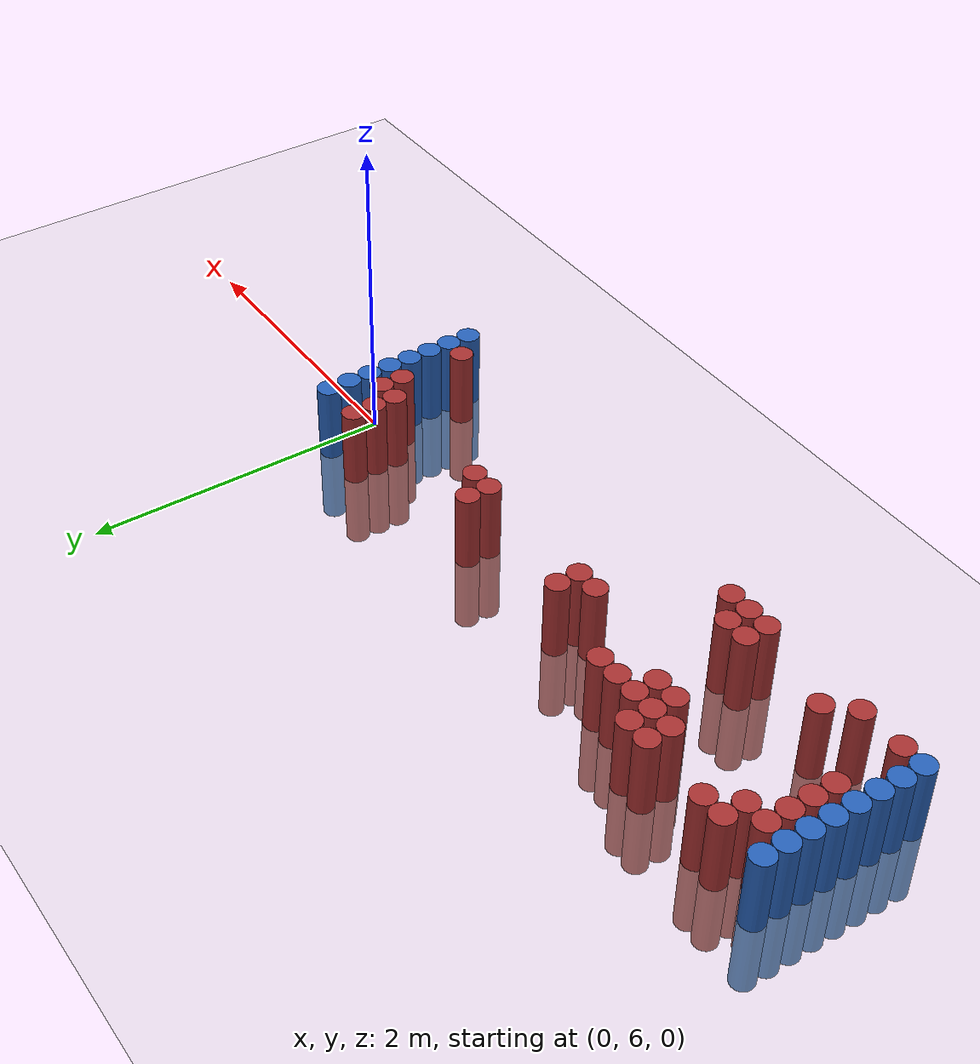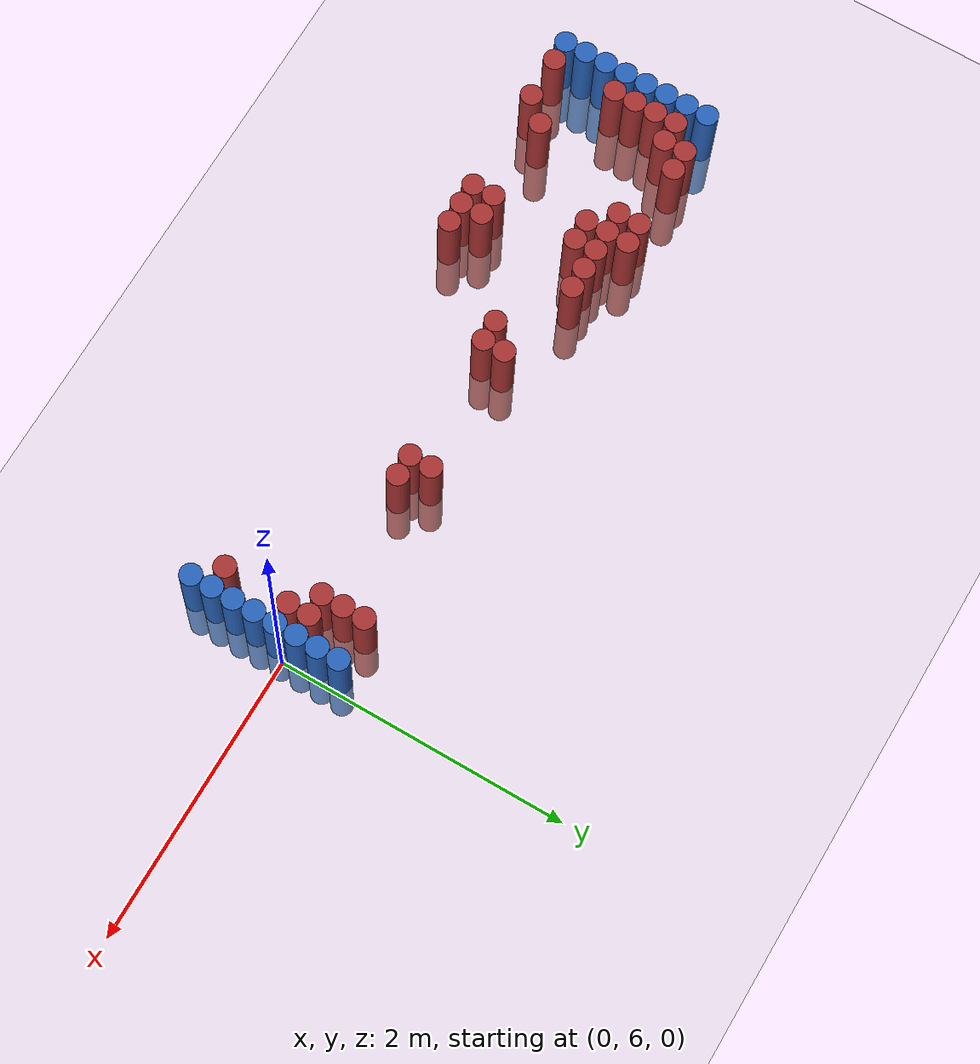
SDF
<sdf version="1.6">
 <world name="default">
  <model name="ground_plane">
   <static>1</static>
   <link name="link">
    <collision name="collision">
     <geometry><plane><normal>0 0 1</normal><size>100 100</size></plane></geometry>
     <surface><friction><ode><mu>100</mu><mu2>50</mu2></ode></friction></surface>
    </collision>
    <visual name="visual">
     <cast_shadows>0</cast_shadows>
     <geometry><plane><normal>0 0 1</normal><size>100 100</size></plane></geometry>
     <material>
      <script><uri>file://media/materials/scripts/gazebo.material</uri><name>Gazebo/Grey</name></script>
     </material>
    </visual>
   </link>
  </model>
  <model name="unit_cylinder_98">
   <static>1</static>
   <pose>-4.425000 5.475000 0.000000 0.000000 0.000000 0.000000</pose>
   <link name="link">
    <inertial>
     <mass>1</mass>
     <inertia><ixx>0.145833</ixx><ixy>0</ixy><ixz>0</ixz><iyy>0.145833</iyy><iyz>0</iyz><izz>0.125</izz></inertia>
    </inertial>
    <collision name="collision">
     <geometry><cylinder><radius>0.075000</radius><length>1</length></cylinder></geometry>
    </collision>
    <visual name="visual">
     <geometry><cylinder><radius>0.075000</radius><length>1</length></cylinder></geometry>
     <material>
      <ambient>0.152000 0.379000 0.720000 1</ambient>
      <diffuse>0.152000 0.379000 0.720000 1</diffuse>
     </material>
     <material>
      <script><name>Gazebo/Grey</name><uri>file://media/materials/scripts/gazebo.material</uri></script>
     </material>
    </visual>
   </link>
  </model>
  <model name="unit_cylinder_99">
   <static>1</static>
   <pose>-4.425000 5.625000 0.000000 0.000000 0.000000 0.000000</pose>
   <link name="link">
    <inertial>
     <mass>1</mass>
     <inertia><ixx>0.145833</ixx><ixy>0</ixy><ixz>0</ixz><iyy>0.145833</iyy><iyz>0</iyz><izz>0.125</izz></inertia>
    </inertial>
    <collision name="collision">
     <geometry><cylinder><radius>0.075000</radius><length>1</length></cylinder></geometry>
    </collision>
    <visual name="visual">
     <geometry><cylinder><radius>0.075000</radius><length>1</length></cylinder></geometry>
     <material>
      <ambient>0.152000 0.379000 0.720000 1</ambient>
      <diffuse>0.152000 0.379000 0.720000 1</diffuse>
     </material>
     <material>
      <script><name>Gazebo/Grey</name><uri>file://media/materials/scripts/gazebo.material</uri></script>
     </material>
    </visual>
   </link>
  </model>
  <model name="unit_cylinder_100">
   <static>1</static>
   <pose>-4.425000 5.775000 0.000000 0.000000 0.000000 0.000000</pose>
   <link name="link">
    <inertial>
     <mass>1</mass>
     <inertia><ixx>0.145833</ixx><ixy>0</ixy><ixz>0</ixz><iyy>0.145833</iyy><iyz>0</iyz><izz>0.125</izz></inertia>
    </inertial>
    <collision name="collision">
     <geometry><cylinder><radius>0.075000</radius><length>1</length></cylinder></geometry>
    </collision>
    <visual name="visual">
     <geometry><cylinder><radius>0.075000</radius><length>1</length></cylinder></geometry>
     <material>
      <ambient>0.152000 0.379000 0.720000 1</ambient>
      <diffuse>0.152000 0.379000 0.720000 1</diffuse>
     </material>
     <material>
      <script><name>Gazebo/Grey</name><uri>file://media/materials/scripts/gazebo.material</uri></script>
     </material>
    </visual>
   </link>
  </model>
  <model name="unit_cylinder_101">
   <static>1</static>
   <pose>-4.425000 5.925000 0.000000 0.000000 0.000000 0.000000</pose>
   <link name="link">
    <inertial>
     <mass>1</mass>
     <inertia><ixx>0.145833</ixx><ixy>0</ixy><ixz>0</ixz><iyy>0.145833</iyy><iyz>0</iyz><izz>0.125</izz></inertia>
    </inertial>
    <collision name="collision">
     <geometry><cylinder><radius>0.075000</radius><length>1</length></cylinder></geometry>
    </collision>
    <visual name="visual">
     <geometry><cylinder><radius>0.075000</radius><length>1</length></cylinder></geometry>
     <material>
      <ambient>0.152000 0.379000 0.720000 1</ambient>
      <diffuse>0.152000 0.379000 0.720000 1</diffuse>
     </material>
     <material>
      <script><name>Gazebo/Grey</name><uri>file://media/materials/scripts/gazebo.material</uri></script>
     </material>
    </visual>
   </link>
  </model>
  <model name="unit_cylinder_102">
   <static>1</static>
   <pose>-4.425000 6.075000 0.000000 0.000000 0.000000 0.000000</pose>
   <link name="link">
    <inertial>
     <mass>1</mass>
     <inertia><ixx>0.145833</ixx><ixy>0</ixy><ixz>0</ixz><iyy>0.145833</iyy><iyz>0</iyz><izz>0.125</izz></inertia>
    </inertial>
    <collision name="collision">
     <geometry><cylinder><radius>0.075000</radius><length>1</length></cylinder></geometry>
    </collision>
    <visual name="visual">
     <geometry><cylinder><radius>0.075000</radius><length>1</length></cylinder></geometry>
     <material>
      <ambient>0.152000 0.379000 0.720000 1</ambient>
      <diffuse>0.152000 0.379000 0.720000 1</diffuse>
     </material>
     <material>
      <script><name>Gazebo/Grey</name><uri>file://media/materials/scripts/gazebo.material</uri></script>
     </material>
    </visual>
   </link>
  </model>
  <model name="unit_cylinder_103">
   <static>1</static>
   <pose>-4.425000 6.225000 0.000000 0.000000 0.000000 0.000000</pose>
   <link name="link">
    <inertial>
     <mass>1</mass>
     <inertia><ixx>0.145833</ixx><ixy>0</ixy><ixz>0</ixz><iyy>0.145833</iyy><iyz>0</iyz><izz>0.125</izz></inertia>
    </inertial>
    <collision name="collision">
     <geometry><cylinder><radius>0.075000</radius><length>1</length></cylinder></geometry>
    </collision>
    <visual name="visual">
     <geometry><cylinder><radius>0.075000</radius><length>1</length></cylinder></geometry>
     <material>
      <ambient>0.152000 0.379000 0.720000 1</ambient>
      <diffuse>0.152000 0.379000 0.720000 1</diffuse>
     </material>
     <material>
      <script><name>Gazebo/Grey</name><uri>file://media/materials/scripts/gazebo.material</uri></script>
     </material>
    </visual>
   </link>
  </model>
  <model name="unit_cylinder_104">
   <static>1</static>
   <pose>-4.425000 6.375000 0.000000 0.000000 0.000000 0.000000</pose>
   <link name="link">
    <inertial>
     <mass>1</mass>
     <inertia><ixx>0.145833</ixx><ixy>0</ixy><ixz>0</ixz><iyy>0.145833</iyy><iyz>0</iyz><izz>0.125</izz></inertia>
    </inertial>
    <collision name="collision">
     <geometry><cylinder><radius>0.075000</radius><length>1</length></cylinder></geometry>
    </collision>
    <visual name="visual">
     <geometry><cylinder><radius>0.075000</radius><length>1</length></cylinder></geometry>
     <material>
      <ambient>0.152000 0.379000 0.720000 1</ambient>
      <diffuse>0.152000 0.379000 0.720000 1</diffuse>
     </material>
     <material>
      <script><name>Gazebo/Grey</name><uri>file://media/materials/scripts/gazebo.material</uri></script>
     </material>
    </visual>
   </link>
  </model>
  <model name="unit_cylinder_105">
   <static>1</static>
   <pose>-4.425000 6.525000 0.000000 0.000000 0.000000 0.000000</pose>
   <link name="link">
    <inertial>
     <mass>1</mass>
     <inertia><ixx>0.145833</ixx><ixy>0</ixy><ixz>0</ixz><iyy>0.145833</iyy><iyz>0</iyz><izz>0.125</izz></inertia>
    </inertial>
    <collision name="collision">
     <geometry><cylinder><radius>0.075000</radius><length>1</length></cylinder></geometry>
    </collision>
    <visual name="visual">
     <geometry><cylinder><radius>0.075000</radius><length>1</length></cylinder></geometry>
     <material>
      <ambient>0.152000 0.379000 0.720000 1</ambient>
      <diffuse>0.152000 0.379000 0.720000 1</diffuse>
     </material>
     <material>
      <script><name>Gazebo/Grey</name><uri>file://media/materials/scripts/gazebo.material</uri></script>
     </material>
    </visual>
   </link>
  </model>
  <model name="unit_cylinder_127">
   <static>1</static>
   <pose>-4.275000 5.475000 0.000000 0.000000 0.000000 0.000000</pose>
   <link name="link">
    <inertial>
     <mass>1</mass>
     <inertia><ixx>0.145833</ixx><ixy>0</ixy><ixz>0</ixz><iyy>0.145833</iyy><iyz>0</iyz><izz>0.125</izz></inertia>
    </inertial>
    <collision name="collision">
     <geometry><cylinder><radius>0.075000</radius><length>1</length></cylinder></geometry>
    </collision>
    <visual name="visual">
     <geometry><cylinder><radius>0.075000</radius><length>1</length></cylinder></geometry>
     <material>
      <ambient>0.648000 0.192000 0.192000 1</ambient>
      <diffuse>0.648000 0.192000 0.192000 1</diffuse>
     </material>
     <material>
      <script><name>Gazebo/Grey</name><uri>file://media/materials/scripts/gazebo.material</uri></script>
     </material>
    </visual>
   </link>
  </model>
  <model name="unit_cylinder_128">
   <static>1</static>
   <pose>-4.275000 5.925000 0.000000 0.000000 0.000000 0.000000</pose>
   <link name="link">
    <inertial>
     <mass>1</mass>
     <inertia><ixx>0.145833</ixx><ixy>0</ixy><ixz>0</ixz><iyy>0.145833</iyy><iyz>0</iyz><izz>0.125</izz></inertia>
    </inertial>
    <collision name="collision">
     <geometry><cylinder><radius>0.075000</radius><length>1</length></cylinder></geometry>
    </collision>
    <visual name="visual">
     <geometry><cylinder><radius>0.075000</radius><length>1</length></cylinder></geometry>
     <material>
      <ambient>0.648000 0.192000 0.192000 1</ambient>
      <diffuse>0.648000 0.192000 0.192000 1</diffuse>
     </material>
     <material>
      <script><name>Gazebo/Grey</name><uri>file://media/materials/scripts/gazebo.material</uri></script>
     </material>
    </visual>
   </link>
  </model>
  <model name="unit_cylinder_129">
   <static>1</static>
   <pose>-4.275000 6.075000 0.000000 0.000000 0.000000 0.000000</pose>
   <link name="link">
    <inertial>
     <mass>1</mass>
     <inertia><ixx>0.145833</ixx><ixy>0</ixy><ixz>0</ixz><iyy>0.145833</iyy><iyz>0</iyz><izz>0.125</izz></inertia>
    </inertial>
    <collision name="collision">
     <geometry><cylinder><radius>0.075000</radius><length>1</length></cylinder></geometry>
    </collision>
    <visual name="visual">
     <geometry><cylinder><radius>0.075000</radius><length>1</length></cylinder></geometry>
     <material>
      <ambient>0.648000 0.192000 0.192000 1</ambient>
      <diffuse>0.648000 0.192000 0.192000 1</diffuse>
     </material>
     <material>
      <script><name>Gazebo/Grey</name><uri>file://media/materials/scripts/gazebo.material</uri></script>
     </material>
    </visual>
   </link>
  </model>
  <model name="unit_cylinder_130">
   <static>1</static>
   <pose>-4.275000 6.225000 0.000000 0.000000 0.000000 0.000000</pose>
   <link name="link">
    <inertial>
     <mass>1</mass>
     <inertia><ixx>0.145833</ixx><ixy>0</ixy><ixz>0</ixz><iyy>0.145833</iyy><iyz>0</iyz><izz>0.125</izz></inertia>
    </inertial>
    <collision name="collision">
     <geometry><cylinder><radius>0.075000</radius><length>1</length></cylinder></geometry>
    </collision>
    <visual name="visual">
     <geometry><cylinder><radius>0.075000</radius><length>1</length></cylinder></geometry>
     <material>
      <ambient>0.648000 0.192000 0.192000 1</ambient>
      <diffuse>0.648000 0.192000 0.192000 1</diffuse>
     </material>
     <material>
      <script><name>Gazebo/Grey</name><uri>file://media/materials/scripts/gazebo.material</uri></script>
     </material>
    </visual>
   </link>
  </model>
  <model name="unit_cylinder_131">
   <static>1</static>
   <pose>-4.275000 6.375000 0.000000 0.000000 0.000000 0.000000</pose>
   <link name="link">
    <inertial>
     <mass>1</mass>
     <inertia><ixx>0.145833</ixx><ixy>0</ixy><ixz>0</ixz><iyy>0.145833</iyy><iyz>0</iyz><izz>0.125</izz></inertia>
    </inertial>
    <collision name="collision">
     <geometry><cylinder><radius>0.075000</radius><length>1</length></cylinder></geometry>
    </collision>
    <visual name="visual">
     <geometry><cylinder><radius>0.075000</radius><length>1</length></cylinder></geometry>
     <material>
      <ambient>0.648000 0.192000 0.192000 1</ambient>
      <diffuse>0.648000 0.192000 0.192000 1</diffuse>
     </material>
     <material>
      <script><name>Gazebo/Grey</name><uri>file://media/materials/scripts/gazebo.material</uri></script>
     </material>
    </visual>
   </link>
  </model>
  <model name="unit_cylinder_137">
   <static>1</static>
   <pose>-4.125000 6.375000 0.000000 0.000000 0.000000 0.000000</pose>
   <link name="link">
    <inertial>
     <mass>1</mass>
     <inertia><ixx>0.145833</ixx><ixy>0</ixy><ixz>0</ixz><iyy>0.145833</iyy><iyz>0</iyz><izz>0.125</izz></inertia>
    </inertial>
    <collision name="collision">
     <geometry><cylinder><radius>0.075000</radius><length>1</length></cylinder></geometry>
    </collision>
    <visual name="visual">
     <geometry><cylinder><radius>0.075000</radius><length>1</length></cylinder></geometry>
     <material>
      <ambient>0.648000 0.192000 0.192000 1</ambient>
      <diffuse>0.648000 0.192000 0.192000 1</diffuse>
     </material>
     <material>
      <script><name>Gazebo/Grey</name><uri>file://media/materials/scripts/gazebo.material</uri></script>
     </material>
    </visual>
   </link>
  </model>
  <model name="unit_cylinder_138">
   <static>1</static>
   <pose>-4.125000 6.525000 0.000000 0.000000 0.000000 0.000000</pose>
   <link name="link">
    <inertial>
     <mass>1</mass>
     <inertia><ixx>0.145833</ixx><ixy>0</ixy><ixz>0</ixz><iyy>0.145833</iyy><iyz>0</iyz><izz>0.125</izz></inertia>
    </inertial>
    <collision name="collision">
     <geometry><cylinder><radius>0.075000</radius><length>1</length></cylinder></geometry>
    </collision>
    <visual name="visual">
     <geometry><cylinder><radius>0.075000</radius><length>1</length></cylinder></geometry>
     <material>
      <ambient>0.648000 0.192000 0.192000 1</ambient>
      <diffuse>0.648000 0.192000 0.192000 1</diffuse>
     </material>
     <material>
      <script><name>Gazebo/Grey</name><uri>file://media/materials/scripts/gazebo.material</uri></script>
     </material>
    </visual>
   </link>
  </model>
  <model name="unit_cylinder_140">
   <static>1</static>
   <pose>-3.975000 5.475000 0.000000 0.000000 0.000000 0.000000</pose>
   <link name="link">
    <inertial>
     <mass>1</mass>
     <inertia><ixx>0.145833</ixx><ixy>0</ixy><ixz>0</ixz><iyy>0.145833</iyy><iyz>0</iyz><izz>0.125</izz></inertia>
    </inertial>
    <collision name="collision">
     <geometry><cylinder><radius>0.075000</radius><length>1</length></cylinder></geometry>
    </collision>
    <visual name="visual">
     <geometry><cylinder><radius>0.075000</radius><length>1</length></cylinder></geometry>
     <material>
      <ambient>0.648000 0.192000 0.192000 1</ambient>
      <diffuse>0.648000 0.192000 0.192000 1</diffuse>
     </material>
     <material>
      <script><name>Gazebo/Grey</name><uri>file://media/materials/scripts/gazebo.material</uri></script>
     </material>
    </visual>
   </link>
  </model>
  <model name="unit_cylinder_141">
   <static>1</static>
   <pose>-3.975000 6.525000 0.000000 0.000000 0.000000 0.000000</pose>
   <link name="link">
    <inertial>
     <mass>1</mass>
     <inertia><ixx>0.145833</ixx><ixy>0</ixy><ixz>0</ixz><iyy>0.145833</iyy><iyz>0</iyz><izz>0.125</izz></inertia>
    </inertial>
    <collision name="collision">
     <geometry><cylinder><radius>0.075000</radius><length>1</length></cylinder></geometry>
    </collision>
    <visual name="visual">
     <geometry><cylinder><radius>0.075000</radius><length>1</length></cylinder></geometry>
     <material>
      <ambient>0.648000 0.192000 0.192000 1</ambient>
      <diffuse>0.648000 0.192000 0.192000 1</diffuse>
     </material>
     <material>
      <script><name>Gazebo/Grey</name><uri>file://media/materials/scripts/gazebo.material</uri></script>
     </material>
    </visual>
   </link>
  </model>
  <model name="unit_cylinder_146">
   <static>1</static>
   <pose>-3.825000 5.625000 0.000000 0.000000 0.000000 0.000000</pose>
   <link name="link">
    <inertial>
     <mass>1</mass>
     <inertia><ixx>0.145833</ixx><ixy>0</ixy><ixz>0</ixz><iyy>0.145833</iyy><iyz>0</iyz><izz>0.125</izz></inertia>
    </inertial>
    <collision name="collision">
     <geometry><cylinder><radius>0.075000</radius><length>1</length></cylinder></geometry>
    </collision>
    <visual name="visual">
     <geometry><cylinder><radius>0.075000</radius><length>1</length></cylinder></geometry>
     <material>
      <ambient>0.648000 0.192000 0.192000 1</ambient>
      <diffuse>0.648000 0.192000 0.192000 1</diffuse>
     </material>
     <material>
      <script><name>Gazebo/Grey</name><uri>file://media/materials/scripts/gazebo.material</uri></script>
     </material>
    </visual>
   </link>
  </model>
  <model name="unit_cylinder_153">
   <static>1</static>
   <pose>-3.525000 6.375000 0.000000 0.000000 0.000000 0.000000</pose>
   <link name="link">
    <inertial>
     <mass>1</mass>
     <inertia><ixx>0.145833</ixx><ixy>0</ixy><ixz>0</ixz><iyy>0.145833</iyy><iyz>0</iyz><izz>0.125</izz></inertia>
    </inertial>
    <collision name="collision">
     <geometry><cylinder><radius>0.075000</radius><length>1</length></cylinder></geometry>
    </collision>
    <visual name="visual">
     <geometry><cylinder><radius>0.075000</radius><length>1</length></cylinder></geometry>
     <material>
      <ambient>0.648000 0.192000 0.192000 1</ambient>
      <diffuse>0.648000 0.192000 0.192000 1</diffuse>
     </material>
     <material>
      <script><name>Gazebo/Grey</name><uri>file://media/materials/scripts/gazebo.material</uri></script>
     </material>
    </visual>
   </link>
  </model>
  <model name="unit_cylinder_154">
   <static>1</static>
   <pose>-3.525000 6.525000 0.000000 0.000000 0.000000 0.000000</pose>
   <link name="link">
    <inertial>
     <mass>1</mass>
     <inertia><ixx>0.145833</ixx><ixy>0</ixy><ixz>0</ixz><iyy>0.145833</iyy><iyz>0</iyz><izz>0.125</izz></inertia>
    </inertial>
    <collision name="collision">
     <geometry><cylinder><radius>0.075000</radius><length>1</length></cylinder></geometry>
    </collision>
    <visual name="visual">
     <geometry><cylinder><radius>0.075000</radius><length>1</length></cylinder></geometry>
     <material>
      <ambient>0.648000 0.192000 0.192000 1</ambient>
      <diffuse>0.648000 0.192000 0.192000 1</diffuse>
     </material>
     <material>
      <script><name>Gazebo/Grey</name><uri>file://media/materials/scripts/gazebo.material</uri></script>
     </material>
    </visual>
   </link>
  </model>
  <model name="unit_cylinder_157">
   <static>1</static>
   <pose>-3.375000 6.225000 0.000000 0.000000 0.000000 0.000000</pose>
   <link name="link">
    <inertial>
     <mass>1</mass>
     <inertia><ixx>0.145833</ixx><ixy>0</ixy><ixz>0</ixz><iyy>0.145833</iyy><iyz>0</iyz><izz>0.125</izz></inertia>
    </inertial>
    <collision name="collision">
     <geometry><cylinder><radius>0.075000</radius><length>1</length></cylinder></geometry>
    </collision>
    <visual name="visual">
     <geometry><cylinder><radius>0.075000</radius><length>1</length></cylinder></geometry>
     <material>
      <ambient>0.648000 0.192000 0.192000 1</ambient>
      <diffuse>0.648000 0.192000 0.192000 1</diffuse>
     </material>
     <material>
      <script><name>Gazebo/Grey</name><uri>file://media/materials/scripts/gazebo.material</uri></script>
     </material>
    </visual>
   </link>
  </model>
  <model name="unit_cylinder_158">
   <static>1</static>
   <pose>-3.375000 6.375000 0.000000 0.000000 0.000000 0.000000</pose>
   <link name="link">
    <inertial>
     <mass>1</mass>
     <inertia><ixx>0.145833</ixx><ixy>0</ixy><ixz>0</ixz><iyy>0.145833</iyy><iyz>0</iyz><izz>0.125</izz></inertia>
    </inertial>
    <collision name="collision">
     <geometry><cylinder><radius>0.075000</radius><length>1</length></cylinder></geometry>
    </collision>
    <visual name="visual">
     <geometry><cylinder><radius>0.075000</radius><length>1</length></cylinder></geometry>
     <material>
      <ambient>0.648000 0.192000 0.192000 1</ambient>
      <diffuse>0.648000 0.192000 0.192000 1</diffuse>
     </material>
     <material>
      <script><name>Gazebo/Grey</name><uri>file://media/materials/scripts/gazebo.material</uri></script>
     </material>
    </visual>
   </link>
  </model>
  <model name="unit_cylinder_159">
   <static>1</static>
   <pose>-3.375000 6.525000 0.000000 0.000000 0.000000 0.000000</pose>
   <link name="link">
    <inertial>
     <mass>1</mass>
     <inertia><ixx>0.145833</ixx><ixy>0</ixy><ixz>0</ixz><iyy>0.145833</iyy><iyz>0</iyz><izz>0.125</izz></inertia>
    </inertial>
    <collision name="collision">
     <geometry><cylinder><radius>0.075000</radius><length>1</length></cylinder></geometry>
    </collision>
    <visual name="visual">
     <geometry><cylinder><radius>0.075000</radius><length>1</length></cylinder></geometry>
     <material>
      <ambient>0.648000 0.192000 0.192000 1</ambient>
      <diffuse>0.648000 0.192000 0.192000 1</diffuse>
     </material>
     <material>
      <script><name>Gazebo/Grey</name><uri>file://media/materials/scripts/gazebo.material</uri></script>
     </material>
    </visual>
   </link>
  </model>
  <model name="unit_cylinder_163">
   <static>1</static>
   <pose>-3.225000 5.475000 0.000000 0.000000 0.000000 0.000000</pose>
   <link name="link">
    <inertial>
     <mass>1</mass>
     <inertia><ixx>0.145833</ixx><ixy>0</ixy><ixz>0</ixz><iyy>0.145833</iyy><iyz>0</iyz><izz>0.125</izz></inertia>
    </inertial>
    <collision name="collision">
     <geometry><cylinder><radius>0.075000</radius><length>1</length></cylinder></geometry>
    </collision>
    <visual name="visual">
     <geometry><cylinder><radius>0.075000</radius><length>1</length></cylinder></geometry>
     <material>
      <ambient>0.648000 0.192000 0.192000 1</ambient>
      <diffuse>0.648000 0.192000 0.192000 1</diffuse>
     </material>
     <material>
      <script><name>Gazebo/Grey</name><uri>file://media/materials/scripts/gazebo.material</uri></script>
     </material>
    </visual>
   </link>
  </model>
  <model name="unit_cylinder_164">
   <static>1</static>
   <pose>-3.225000 5.625000 0.000000 0.000000 0.000000 0.000000</pose>
   <link name="link">
    <inertial>
     <mass>1</mass>
     <inertia><ixx>0.145833</ixx><ixy>0</ixy><ixz>0</ixz><iyy>0.145833</iyy><iyz>0</iyz><izz>0.125</izz></inertia>
    </inertial>
    <collision name="collision">
     <geometry><cylinder><radius>0.075000</radius><length>1</length></cylinder></geometry>
    </collision>
    <visual name="visual">
     <geometry><cylinder><radius>0.075000</radius><length>1</length></cylinder></geometry>
     <material>
      <ambient>0.648000 0.192000 0.192000 1</ambient>
      <diffuse>0.648000 0.192000 0.192000 1</diffuse>
     </material>
     <material>
      <script><name>Gazebo/Grey</name><uri>file://media/materials/scripts/gazebo.material</uri></script>
     </material>
    </visual>
   </link>
  </model>
  <model name="unit_cylinder_165">
   <static>1</static>
   <pose>-3.225000 6.225000 0.000000 0.000000 0.000000 0.000000</pose>
   <link name="link">
    <inertial>
     <mass>1</mass>
     <inertia><ixx>0.145833</ixx><ixy>0</ixy><ixz>0</ixz><iyy>0.145833</iyy><iyz>0</iyz><izz>0.125</izz></inertia>
    </inertial>
    <collision name="collision">
     <geometry><cylinder><radius>0.075000</radius><length>1</length></cylinder></geometry>
    </collision>
    <visual name="visual">
     <geometry><cylinder><radius>0.075000</radius><length>1</length></cylinder></geometry>
     <material>
      <ambient>0.648000 0.192000 0.192000 1</ambient>
      <diffuse>0.648000 0.192000 0.192000 1</diffuse>
     </material>
     <material>
      <script><name>Gazebo/Grey</name><uri>file://media/materials/scripts/gazebo.material</uri></script>
     </material>
    </visual>
   </link>
  </model>
  <model name="unit_cylinder_166">
   <static>1</static>
   <pose>-3.225000 6.375000 0.000000 0.000000 0.000000 0.000000</pose>
   <link name="link">
    <inertial>
     <mass>1</mass>
     <inertia><ixx>0.145833</ixx><ixy>0</ixy><ixz>0</ixz><iyy>0.145833</iyy><iyz>0</iyz><izz>0.125</izz></inertia>
    </inertial>
    <collision name="collision">
     <geometry><cylinder><radius>0.075000</radius><length>1</length></cylinder></geometry>
    </collision>
    <visual name="visual">
     <geometry><cylinder><radius>0.075000</radius><length>1</length></cylinder></geometry>
     <material>
      <ambient>0.648000 0.192000 0.192000 1</ambient>
      <diffuse>0.648000 0.192000 0.192000 1</diffuse>
     </material>
     <material>
      <script><name>Gazebo/Grey</name><uri>file://media/materials/scripts/gazebo.material</uri></script>
     </material>
    </visual>
   </link>
  </model>
  <model name="unit_cylinder_174">
   <static>1</static>
   <pose>-3.075000 5.475000 0.000000 0.000000 0.000000 0.000000</pose>
   <link name="link">
    <inertial>
     <mass>1</mass>
     <inertia><ixx>0.145833</ixx><ixy>0</ixy><ixz>0</ixz><iyy>0.145833</iyy><iyz>0</iyz><izz>0.125</izz></inertia>
    </inertial>
    <collision name="collision">
     <geometry><cylinder><radius>0.075000</radius><length>1</length></cylinder></geometry>
    </collision>
    <visual name="visual">
     <geometry><cylinder><radius>0.075000</radius><length>1</length></cylinder></geometry>
     <material>
      <ambient>0.648000 0.192000 0.192000 1</ambient>
      <diffuse>0.648000 0.192000 0.192000 1</diffuse>
     </material>
     <material>
      <script><name>Gazebo/Grey</name><uri>file://media/materials/scripts/gazebo.material</uri></script>
     </material>
    </visual>
   </link>
  </model>
  <model name="unit_cylinder_175">
   <static>1</static>
   <pose>-3.075000 5.625000 0.000000 0.000000 0.000000 0.000000</pose>
   <link name="link">
    <inertial>
     <mass>1</mass>
     <inertia><ixx>0.145833</ixx><ixy>0</ixy><ixz>0</ixz><iyy>0.145833</iyy><iyz>0</iyz><izz>0.125</izz></inertia>
    </inertial>
    <collision name="collision">
     <geometry><cylinder><radius>0.075000</radius><length>1</length></cylinder></geometry>
    </collision>
    <visual name="visual">
     <geometry><cylinder><radius>0.075000</radius><length>1</length></cylinder></geometry>
     <material>
      <ambient>0.648000 0.192000 0.192000 1</ambient>
      <diffuse>0.648000 0.192000 0.192000 1</diffuse>
     </material>
     <material>
      <script><name>Gazebo/Grey</name><uri>file://media/materials/scripts/gazebo.material</uri></script>
     </material>
    </visual>
   </link>
  </model>
  <model name="unit_cylinder_176">
   <static>1</static>
   <pose>-3.075000 6.375000 0.000000 0.000000 0.000000 0.000000</pose>
   <link name="link">
    <inertial>
     <mass>1</mass>
     <inertia><ixx>0.145833</ixx><ixy>0</ixy><ixz>0</ixz><iyy>0.145833</iyy><iyz>0</iyz><izz>0.125</izz></inertia>
    </inertial>
    <collision name="collision">
     <geometry><cylinder><radius>0.075000</radius><length>1</length></cylinder></geometry>
    </collision>
    <visual name="visual">
     <geometry><cylinder><radius>0.075000</radius><length>1</length></cylinder></geometry>
     <material>
      <ambient>0.648000 0.192000 0.192000 1</ambient>
      <diffuse>0.648000 0.192000 0.192000 1</diffuse>
     </material>
     <material>
      <script><name>Gazebo/Grey</name><uri>file://media/materials/scripts/gazebo.material</uri></script>
     </material>
    </visual>
   </link>
  </model>
  <model name="unit_cylinder_184">
   <static>1</static>
   <pose>-2.925000 5.475000 0.000000 0.000000 0.000000 0.000000</pose>
   <link name="link">
    <inertial>
     <mass>1</mass>
     <inertia><ixx>0.145833</ixx><ixy>0</ixy><ixz>0</ixz><iyy>0.145833</iyy><iyz>0</iyz><izz>0.125</izz></inertia>
    </inertial>
    <collision name="collision">
     <geometry><cylinder><radius>0.075000</radius><length>1</length></cylinder></geometry>
    </collision>
    <visual name="visual">
     <geometry><cylinder><radius>0.075000</radius><length>1</length></cylinder></geometry>
     <material>
      <ambient>0.648000 0.192000 0.192000 1</ambient>
      <diffuse>0.648000 0.192000 0.192000 1</diffuse>
     </material>
     <material>
      <script><name>Gazebo/Grey</name><uri>file://media/materials/scripts/gazebo.material</uri></script>
     </material>
    </visual>
   </link>
  </model>
  <model name="unit_cylinder_185">
   <static>1</static>
   <pose>-2.925000 6.375000 0.000000 0.000000 0.000000 0.000000</pose>
   <link name="link">
    <inertial>
     <mass>1</mass>
     <inertia><ixx>0.145833</ixx><ixy>0</ixy><ixz>0</ixz><iyy>0.145833</iyy><iyz>0</iyz><izz>0.125</izz></inertia>
    </inertial>
    <collision name="collision">
     <geometry><cylinder><radius>0.075000</radius><length>1</length></cylinder></geometry>
    </collision>
    <visual name="visual">
     <geometry><cylinder><radius>0.075000</radius><length>1</length></cylinder></geometry>
     <material>
      <ambient>0.648000 0.192000 0.192000 1</ambient>
      <diffuse>0.648000 0.192000 0.192000 1</diffuse>
     </material>
     <material>
      <script><name>Gazebo/Grey</name><uri>file://media/materials/scripts/gazebo.material</uri></script>
     </material>
    </visual>
   </link>
  </model>
  <model name="unit_cylinder_200">
   <static>1</static>
   <pose>-2.475000 6.075000 0.000000 0.000000 0.000000 0.000000</pose>
   <link name="link">
    <inertial>
     <mass>1</mass>
     <inertia><ixx>0.145833</ixx><ixy>0</ixy><ixz>0</ixz><iyy>0.145833</iyy><iyz>0</iyz><izz>0.125</izz></inertia>
    </inertial>
    <collision name="collision">
     <geometry><cylinder><radius>0.075000</radius><length>1</length></cylinder></geometry>
    </collision>
    <visual name="visual">
     <geometry><cylinder><radius>0.075000</radius><length>1</length></cylinder></geometry>
     <material>
      <ambient>0.648000 0.192000 0.192000 1</ambient>
      <diffuse>0.648000 0.192000 0.192000 1</diffuse>
     </material>
     <material>
      <script><name>Gazebo/Grey</name><uri>file://media/materials/scripts/gazebo.material</uri></script>
     </material>
    </visual>
   </link>
  </model>
  <model name="unit_cylinder_208">
   <static>1</static>
   <pose>-2.325000 6.075000 0.000000 0.000000 0.000000 0.000000</pose>
   <link name="link">
    <inertial>
     <mass>1</mass>
     <inertia><ixx>0.145833</ixx><ixy>0</ixy><ixz>0</ixz><iyy>0.145833</iyy><iyz>0</iyz><izz>0.125</izz></inertia>
    </inertial>
    <collision name="collision">
     <geometry><cylinder><radius>0.075000</radius><length>1</length></cylinder></geometry>
    </collision>
    <visual name="visual">
     <geometry><cylinder><radius>0.075000</radius><length>1</length></cylinder></geometry>
     <material>
      <ambient>0.648000 0.192000 0.192000 1</ambient>
      <diffuse>0.648000 0.192000 0.192000 1</diffuse>
     </material>
     <material>
      <script><name>Gazebo/Grey</name><uri>file://media/materials/scripts/gazebo.material</uri></script>
     </material>
    </visual>
   </link>
  </model>
  <model name="unit_cylinder_209">
   <static>1</static>
   <pose>-2.325000 6.225000 0.000000 0.000000 0.000000 0.000000</pose>
   <link name="link">
    <inertial>
     <mass>1</mass>
     <inertia><ixx>0.145833</ixx><ixy>0</ixy><ixz>0</ixz><iyy>0.145833</iyy><iyz>0</iyz><izz>0.125</izz></inertia>
    </inertial>
    <collision name="collision">
     <geometry><cylinder><radius>0.075000</radius><length>1</length></cylinder></geometry>
    </collision>
    <visual name="visual">
     <geometry><cylinder><radius>0.075000</radius><length>1</length></cylinder></geometry>
     <material>
      <ambient>0.648000 0.192000 0.192000 1</ambient>
      <diffuse>0.648000 0.192000 0.192000 1</diffuse>
     </material>
     <material>
      <script><name>Gazebo/Grey</name><uri>file://media/materials/scripts/gazebo.material</uri></script>
     </material>
    </visual>
   </link>
  </model>
  <model name="unit_cylinder_215">
   <static>1</static>
   <pose>-1.425000 6.075000 0.000000 0.000000 0.000000 0.000000</pose>
   <link name="link">
    <inertial>
     <mass>1</mass>
     <inertia><ixx>0.145833</ixx><ixy>0</ixy><ixz>0</ixz><iyy>0.145833</iyy><iyz>0</iyz><izz>0.125</izz></inertia>
    </inertial>
    <collision name="collision">
     <geometry><cylinder><radius>0.075000</radius><length>1</length></cylinder></geometry>
    </collision>
    <visual name="visual">
     <geometry><cylinder><radius>0.075000</radius><length>1</length></cylinder></geometry>
     <material>
      <ambient>0.648000 0.192000 0.192000 1</ambient>
      <diffuse>0.648000 0.192000 0.192000 1</diffuse>
     </material>
     <material>
      <script><name>Gazebo/Grey</name><uri>file://media/materials/scripts/gazebo.material</uri></script>
     </material>
    </visual>
   </link>
  </model>
  <model name="unit_cylinder_216">
   <static>1</static>
   <pose>-1.425000 6.225000 0.000000 0.000000 0.000000 0.000000</pose>
   <link name="link">
    <inertial>
     <mass>1</mass>
     <inertia><ixx>0.145833</ixx><ixy>0</ixy><ixz>0</ixz><iyy>0.145833</iyy><iyz>0</iyz><izz>0.125</izz></inertia>
    </inertial>
    <collision name="collision">
     <geometry><cylinder><radius>0.075000</radius><length>1</length></cylinder></geometry>
    </collision>
    <visual name="visual">
     <geometry><cylinder><radius>0.075000</radius><length>1</length></cylinder></geometry>
     <material>
      <ambient>0.648000 0.192000 0.192000 1</ambient>
      <diffuse>0.648000 0.192000 0.192000 1</diffuse>
     </material>
     <material>
      <script><name>Gazebo/Grey</name><uri>file://media/materials/scripts/gazebo.material</uri></script>
     </material>
    </visual>
   </link>
  </model>
  <model name="unit_cylinder_219">
   <static>1</static>
   <pose>-1.275000 6.075000 0.000000 0.000000 0.000000 0.000000</pose>
   <link name="link">
    <inertial>
     <mass>1</mass>
     <inertia><ixx>0.145833</ixx><ixy>0</ixy><ixz>0</ixz><iyy>0.145833</iyy><iyz>0</iyz><izz>0.125</izz></inertia>
    </inertial>
    <collision name="collision">
     <geometry><cylinder><radius>0.075000</radius><length>1</length></cylinder></geometry>
    </collision>
    <visual name="visual">
     <geometry><cylinder><radius>0.075000</radius><length>1</length></cylinder></geometry>
     <material>
      <ambient>0.648000 0.192000 0.192000 1</ambient>
      <diffuse>0.648000 0.192000 0.192000 1</diffuse>
     </material>
     <material>
      <script><name>Gazebo/Grey</name><uri>file://media/materials/scripts/gazebo.material</uri></script>
     </material>
    </visual>
   </link>
  </model>
  <model name="unit_cylinder_255">
   <static>1</static>
   <pose>-0.375000 6.075000 0.000000 0.000000 0.000000 0.000000</pose>
   <link name="link">
    <inertial>
     <mass>1</mass>
     <inertia><ixx>0.145833</ixx><ixy>0</ixy><ixz>0</ixz><iyy>0.145833</iyy><iyz>0</iyz><izz>0.125</izz></inertia>
    </inertial>
    <collision name="collision">
     <geometry><cylinder><radius>0.075000</radius><length>1</length></cylinder></geometry>
    </collision>
    <visual name="visual">
     <geometry><cylinder><radius>0.075000</radius><length>1</length></cylinder></geometry>
     <material>
      <ambient>0.648000 0.192000 0.192000 1</ambient>
      <diffuse>0.648000 0.192000 0.192000 1</diffuse>
     </material>
     <material>
      <script><name>Gazebo/Grey</name><uri>file://media/materials/scripts/gazebo.material</uri></script>
     </material>
    </visual>
   </link>
  </model>
  <model name="unit_cylinder_256">
   <static>1</static>
   <pose>-0.375000 6.225000 0.000000 0.000000 0.000000 0.000000</pose>
   <link name="link">
    <inertial>
     <mass>1</mass>
     <inertia><ixx>0.145833</ixx><ixy>0</ixy><ixz>0</ixz><iyy>0.145833</iyy><iyz>0</iyz><izz>0.125</izz></inertia>
    </inertial>
    <collision name="collision">
     <geometry><cylinder><radius>0.075000</radius><length>1</length></cylinder></geometry>
    </collision>
    <visual name="visual">
     <geometry><cylinder><radius>0.075000</radius><length>1</length></cylinder></geometry>
     <material>
      <ambient>0.648000 0.192000 0.192000 1</ambient>
      <diffuse>0.648000 0.192000 0.192000 1</diffuse>
     </material>
     <material>
      <script><name>Gazebo/Grey</name><uri>file://media/materials/scripts/gazebo.material</uri></script>
     </material>
    </visual>
   </link>
  </model>
  <model name="unit_cylinder_257">
   <static>1</static>
   <pose>-0.375000 6.375000 0.000000 0.000000 0.000000 0.000000</pose>
   <link name="link">
    <inertial>
     <mass>1</mass>
     <inertia><ixx>0.145833</ixx><ixy>0</ixy><ixz>0</ixz><iyy>0.145833</iyy><iyz>0</iyz><izz>0.125</izz></inertia>
    </inertial>
    <collision name="collision">
     <geometry><cylinder><radius>0.075000</radius><length>1</length></cylinder></geometry>
    </collision>
    <visual name="visual">
     <geometry><cylinder><radius>0.075000</radius><length>1</length></cylinder></geometry>
     <material>
      <ambient>0.648000 0.192000 0.192000 1</ambient>
      <diffuse>0.648000 0.192000 0.192000 1</diffuse>
     </material>
     <material>
      <script><name>Gazebo/Grey</name><uri>file://media/materials/scripts/gazebo.material</uri></script>
     </material>
    </visual>
   </link>
  </model>
  <model name="unit_cylinder_265">
   <static>1</static>
   <pose>-0.225000 5.475000 0.000000 0.000000 0.000000 0.000000</pose>
   <link name="link">
    <inertial>
     <mass>1</mass>
     <inertia><ixx>0.145833</ixx><ixy>0</ixy><ixz>0</ixz><iyy>0.145833</iyy><iyz>0</iyz><izz>0.125</izz></inertia>
    </inertial>
    <collision name="collision">
     <geometry><cylinder><radius>0.075000</radius><length>1</length></cylinder></geometry>
    </collision>
    <visual name="visual">
     <geometry><cylinder><radius>0.075000</radius><length>1</length></cylinder></geometry>
     <material>
      <ambient>0.648000 0.192000 0.192000 1</ambient>
      <diffuse>0.648000 0.192000 0.192000 1</diffuse>
     </material>
     <material>
      <script><name>Gazebo/Grey</name><uri>file://media/materials/scripts/gazebo.material</uri></script>
     </material>
    </visual>
   </link>
  </model>
  <model name="unit_cylinder_266">
   <static>1</static>
   <pose>-0.225000 5.925000 0.000000 0.000000 0.000000 0.000000</pose>
   <link name="link">
    <inertial>
     <mass>1</mass>
     <inertia><ixx>0.145833</ixx><ixy>0</ixy><ixz>0</ixz><iyy>0.145833</iyy><iyz>0</iyz><izz>0.125</izz></inertia>
    </inertial>
    <collision name="collision">
     <geometry><cylinder><radius>0.075000</radius><length>1</length></cylinder></geometry>
    </collision>
    <visual name="visual">
     <geometry><cylinder><radius>0.075000</radius><length>1</length></cylinder></geometry>
     <material>
      <ambient>0.648000 0.192000 0.192000 1</ambient>
      <diffuse>0.648000 0.192000 0.192000 1</diffuse>
     </material>
     <material>
      <script><name>Gazebo/Grey</name><uri>file://media/materials/scripts/gazebo.material</uri></script>
     </material>
    </visual>
   </link>
  </model>
  <model name="unit_cylinder_267">
   <static>1</static>
   <pose>-0.225000 6.075000 0.000000 0.000000 0.000000 0.000000</pose>
   <link name="link">
    <inertial>
     <mass>1</mass>
     <inertia><ixx>0.145833</ixx><ixy>0</ixy><ixz>0</ixz><iyy>0.145833</iyy><iyz>0</iyz><izz>0.125</izz></inertia>
    </inertial>
    <collision name="collision">
     <geometry><cylinder><radius>0.075000</radius><length>1</length></cylinder></geometry>
    </collision>
    <visual name="visual">
     <geometry><cylinder><radius>0.075000</radius><length>1</length></cylinder></geometry>
     <material>
      <ambient>0.648000 0.192000 0.192000 1</ambient>
      <diffuse>0.648000 0.192000 0.192000 1</diffuse>
     </material>
     <material>
      <script><name>Gazebo/Grey</name><uri>file://media/materials/scripts/gazebo.material</uri></script>
     </material>
    </visual>
   </link>
  </model>
  <model name="unit_cylinder_283">
   <static>1</static>
   <pose>-0.075000 5.325000 0.000000 0.000000 0.000000 0.000000</pose>
   <link name="link">
    <inertial>
     <mass>1</mass>
     <inertia><ixx>0.145833</ixx><ixy>0</ixy><ixz>0</ixz><iyy>0.145833</iyy><iyz>0</iyz><izz>0.125</izz></inertia>
    </inertial>
    <collision name="collision">
     <geometry><cylinder><radius>0.075000</radius><length>1</length></cylinder></geometry>
    </collision>
    <visual name="visual">
     <geometry><cylinder><radius>0.075000</radius><length>1</length></cylinder></geometry>
     <material>
      <ambient>0.152000 0.379000 0.720000 1</ambient>
      <diffuse>0.152000 0.379000 0.720000 1</diffuse>
     </material>
     <material>
      <script><name>Gazebo/Grey</name><uri>file://media/materials/scripts/gazebo.material</uri></script>
     </material>
    </visual>
   </link>
  </model>
  <model name="unit_cylinder_284">
   <static>1</static>
   <pose>-0.075000 5.475000 0.000000 0.000000 0.000000 0.000000</pose>
   <link name="link">
    <inertial>
     <mass>1</mass>
     <inertia><ixx>0.145833</ixx><ixy>0</ixy><ixz>0</ixz><iyy>0.145833</iyy><iyz>0</iyz><izz>0.125</izz></inertia>
    </inertial>
    <collision name="collision">
     <geometry><cylinder><radius>0.075000</radius><length>1</length></cylinder></geometry>
    </collision>
    <visual name="visual">
     <geometry><cylinder><radius>0.075000</radius><length>1</length></cylinder></geometry>
     <material>
      <ambient>0.152000 0.379000 0.720000 1</ambient>
      <diffuse>0.152000 0.379000 0.720000 1</diffuse>
     </material>
     <material>
      <script><name>Gazebo/Grey</name><uri>file://media/materials/scripts/gazebo.material</uri></script>
     </material>
    </visual>
   </link>
  </model>
  <model name="unit_cylinder_285">
   <static>1</static>
   <pose>-0.075000 5.625000 0.000000 0.000000 0.000000 0.000000</pose>
   <link name="link">
    <inertial>
     <mass>1</mass>
     <inertia><ixx>0.145833</ixx><ixy>0</ixy><ixz>0</ixz><iyy>0.145833</iyy><iyz>0</iyz><izz>0.125</izz></inertia>
    </inertial>
    <collision name="collision">
     <geometry><cylinder><radius>0.075000</radius><length>1</length></cylinder></geometry>
    </collision>
    <visual name="visual">
     <geometry><cylinder><radius>0.075000</radius><length>1</length></cylinder></geometry>
     <material>
      <ambient>0.152000 0.379000 0.720000 1</ambient>
      <diffuse>0.152000 0.379000 0.720000 1</diffuse>
     </material>
     <material>
      <script><name>Gazebo/Grey</name><uri>file://media/materials/scripts/gazebo.material</uri></script>
     </material>
    </visual>
   </link>
  </model>
  <model name="unit_cylinder_286">
   <static>1</static>
   <pose>-0.075000 5.775000 0.000000 0.000000 0.000000 0.000000</pose>
   <link name="link">
    <inertial>
     <mass>1</mass>
     <inertia><ixx>0.145833</ixx><ixy>0</ixy><ixz>0</ixz><iyy>0.145833</iyy><iyz>0</iyz><izz>0.125</izz></inertia>
    </inertial>
    <collision name="collision">
     <geometry><cylinder><radius>0.075000</radius><length>1</length></cylinder></geometry>
    </collision>
    <visual name="visual">
     <geometry><cylinder><radius>0.075000</radius><length>1</length></cylinder></geometry>
     <material>
      <ambient>0.152000 0.379000 0.720000 1</ambient>
      <diffuse>0.152000 0.379000 0.720000 1</diffuse>
     </material>
     <material>
      <script><name>Gazebo/Grey</name><uri>file://media/materials/scripts/gazebo.material</uri></script>
     </material>
    </visual>
   </link>
  </model>
  <model name="unit_cylinder_287">
   <static>1</static>
   <pose>-0.075000 5.925000 0.000000 0.000000 0.000000 0.000000</pose>
   <link name="link">
    <inertial>
     <mass>1</mass>
     <inertia><ixx>0.145833</ixx><ixy>0</ixy><ixz>0</ixz><iyy>0.145833</iyy><iyz>0</iyz><izz>0.125</izz></inertia>
    </inertial>
    <collision name="collision">
     <geometry><cylinder><radius>0.075000</radius><length>1</length></cylinder></geometry>
    </collision>
    <visual name="visual">
     <geometry><cylinder><radius>0.075000</radius><length>1</length></cylinder></geometry>
     <material>
      <ambient>0.152000 0.379000 0.720000 1</ambient>
      <diffuse>0.152000 0.379000 0.720000 1</diffuse>
     </material>
     <material>
      <script><name>Gazebo/Grey</name><uri>file://media/materials/scripts/gazebo.material</uri></script>
     </material>
    </visual>
   </link>
  </model>
  <model name="unit_cylinder_288">
   <static>1</static>
   <pose>-0.075000 6.075000 0.000000 0.000000 0.000000 0.000000</pose>
   <link name="link">
    <inertial>
     <mass>1</mass>
     <inertia><ixx>0.145833</ixx><ixy>0</ixy><ixz>0</ixz><iyy>0.145833</iyy><iyz>0</iyz><izz>0.125</izz></inertia>
    </inertial>
    <collision name="collision">
     <geometry><cylinder><radius>0.075000</radius><length>1</length></cylinder></geometry>
    </collision>
    <visual name="visual">
     <geometry><cylinder><radius>0.075000</radius><length>1</length></cylinder></geometry>
     <material>
      <ambient>0.152000 0.379000 0.720000 1</ambient>
      <diffuse>0.152000 0.379000 0.720000 1</diffuse>
     </material>
     <material>
      <script><name>Gazebo/Grey</name><uri>file://media/materials/scripts/gazebo.material</uri></script>
     </material>
    </visual>
   </link>
  </model>
  <model name="unit_cylinder_289">
   <static>1</static>
   <pose>-0.075000 6.225000 0.000000 0.000000 0.000000 0.000000</pose>
   <link name="link">
    <inertial>
     <mass>1</mass>
     <inertia><ixx>0.145833</ixx><ixy>0</ixy><ixz>0</ixz><iyy>0.145833</iyy><iyz>0</iyz><izz>0.125</izz></inertia>
    </inertial>
    <collision name="collision">
     <geometry><cylinder><radius>0.075000</radius><length>1</length></cylinder></geometry>
    </collision>
    <visual name="visual">
     <geometry><cylinder><radius>0.075000</radius><length>1</length></cylinder></geometry>
     <material>
      <ambient>0.152000 0.379000 0.720000 1</ambient>
      <diffuse>0.152000 0.379000 0.720000 1</diffuse>
     </material>
     <material>
      <script><name>Gazebo/Grey</name><uri>file://media/materials/scripts/gazebo.material</uri></script>
     </material>
    </visual>
   </link>
  </model>
  <model name="unit_cylinder_290">
   <static>1</static>
   <pose>-0.075000 6.375000 0.000000 0.000000 0.000000 0.000000</pose>
   <link name="link">
    <inertial>
     <mass>1</mass>
     <inertia><ixx>0.145833</ixx><ixy>0</ixy><ixz>0</ixz><iyy>0.145833</iyy><iyz>0</iyz><izz>0.125</izz></inertia>
    </inertial>
    <collision name="collision">
     <geometry><cylinder><radius>0.075000</radius><length>1</length></cylinder></geometry>
    </collision>
    <visual name="visual">
     <geometry><cylinder><radius>0.075000</radius><length>1</length></cylinder></geometry>
     <material>
      <ambient>0.152000 0.379000 0.720000 1</ambient>
      <diffuse>0.152000 0.379000 0.720000 1</diffuse>
     </material>
     <material>
      <script><name>Gazebo/Grey</name><uri>file://media/materials/scripts/gazebo.material</uri></script>
     </material>
    </visual>
   </link>
  </model>
 </world>
</sdf>
